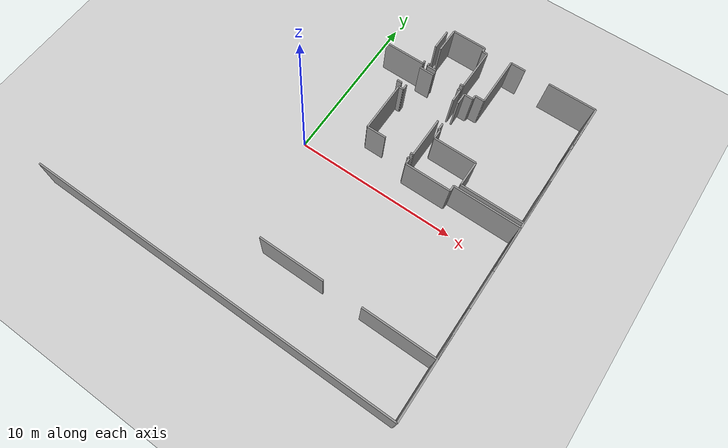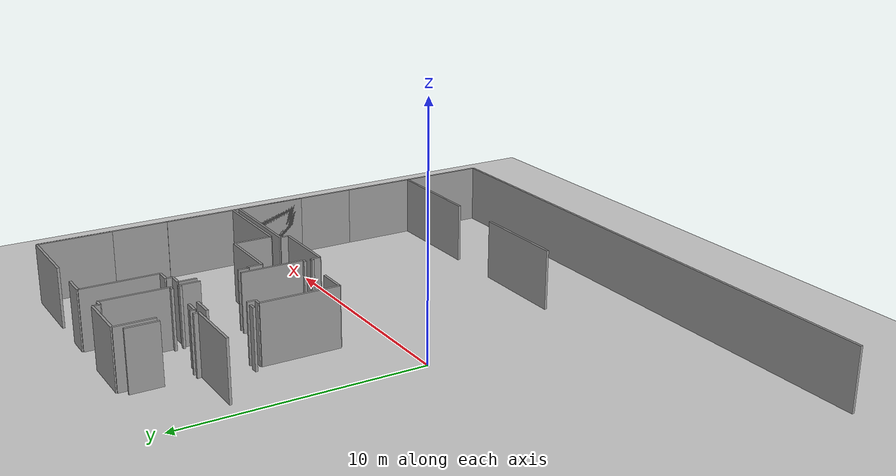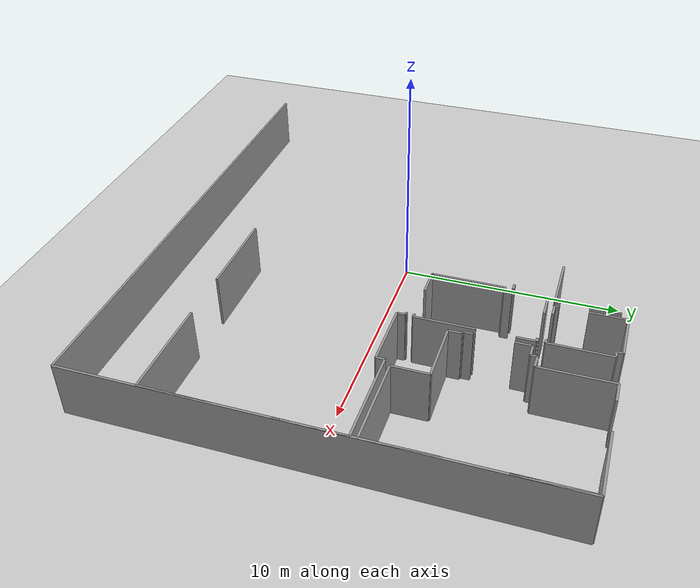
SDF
<sdf version="1.6">
 <world name="default">
  <model name="ground_plane">
   <static>1</static>
   <link name="link">
    <collision name="collision">
     <geometry><plane><normal>0 0 1</normal><size>100 100</size></plane></geometry>
     <surface><friction><ode><mu>100</mu><mu2>50</mu2></ode></friction></surface>
    </collision>
    <visual name="visual">
     <cast_shadows>0</cast_shadows>
     <geometry><plane><normal>0 0 1</normal><size>100 100</size></plane></geometry>
     <material>
      <script><uri>file://media/materials/scripts/gazebo.material</uri><name>Gazebo/Grey</name></script>
     </material>
    </visual>
   </link>
  </model>
  <model name="0510034880_A-40">
   <static>1</static>
   <link name="Wall_22">
    <collision name="Wall_22_Collision">
     <geometry><box><size>0.310292073206 0.1 2.5</size></box></geometry>
     <pose>0.155146036603 0 1.25 0 0 0</pose>
    </collision>
    <visual name="Wall_22_Visual">
     <pose>0.155146036603 0 1.25 0 0 0</pose>
     <geometry><box><size>0.310292073206 0.1 2.5</size></box></geometry>
     <material>
      <script><uri>file://media/materials/scripts/gazebo.material</uri><name>Gazebo/Grey</name></script>
      <ambient>1 1 1 1</ambient>
     </material>
    </visual>
    <pose>13.4078169734 -4.86386633572 0 0 0 3.14159265359</pose>
   </link>
   <link name="Wall_29">
    <collision name="Wall_29_Collision">
     <geometry><box><size>4.45962330745 0.1 2.5</size></box></geometry>
     <pose>2.22981165373 0 1.25 0 0 0</pose>
    </collision>
    <visual name="Wall_29_Visual">
     <pose>2.22981165373 0 1.25 0 0 0</pose>
     <geometry><box><size>4.45962330745 0.1 2.5</size></box></geometry>
     <material>
      <script><uri>file://media/materials/scripts/gazebo.material</uri><name>Gazebo/Grey</name></script>
      <ambient>1 1 1 1</ambient>
     </material>
    </visual>
    <pose>23.39708879 -17.1808365444 0 0 0 3.14159265359</pose>
   </link>
   <link name="Wall_30">
    <collision name="Wall_30_Collision">
     <geometry><box><size>4.08216899745 0.1 2.5</size></box></geometry>
     <pose>2.04108449873 0 1.25 0 0 0</pose>
    </collision>
    <visual name="Wall_30_Visual">
     <pose>2.04108449873 0 1.25 0 0 0</pose>
     <geometry><box><size>4.08216899745 0.1 2.5</size></box></geometry>
     <material>
      <script><uri>file://media/materials/scripts/gazebo.material</uri><name>Gazebo/Grey</name></script>
      <ambient>1 1 1 1</ambient>
     </material>
    </visual>
    <pose>16.5711710225 -17.1808365444 0 0 0 3.14159265359</pose>
   </link>
   <link name="Wall_35">
    <collision name="Wall_35_Collision">
     <geometry><box><size>0.143973490595 0.1 2.5</size></box></geometry>
     <pose>0.0719867452977 0 1.25 0 0 0</pose>
    </collision>
    <visual name="Wall_35_Visual">
     <pose>0.0719867452977 0 1.25 0 0 0</pose>
     <geometry><box><size>0.143973490595 0.1 2.5</size></box></geometry>
     <material>
      <script><uri>file://media/materials/scripts/gazebo.material</uri><name>Gazebo/Grey</name></script>
      <ambient>1 1 1 1</ambient>
     </material>
    </visual>
    <pose>16.2719245345 -8.75584812955 0 0 0 0.0</pose>
   </link>
   <link name="Wall_36">
    <collision name="Wall_36_Collision">
     <geometry><box><size>0.369709704245 0.1 2.5</size></box></geometry>
     <pose>0.184854852122 0 1.25 0 0 0</pose>
    </collision>
    <visual name="Wall_36_Visual">
     <pose>0.184854852122 0 1.25 0 0 0</pose>
     <geometry><box><size>0.369709704245 0.1 2.5</size></box></geometry>
     <material>
      <script><uri>file://media/materials/scripts/gazebo.material</uri><name>Gazebo/Grey</name></script>
      <ambient>1 1 1 1</ambient>
     </material>
    </visual>
    <pose>16.4158980251 -8.75584812955 0 0 0 -1.57079632679</pose>
   </link>
   <link name="Wall_37">
    <collision name="Wall_37_Collision">
     <geometry><box><size>2.83211345213 0.1 2.5</size></box></geometry>
     <pose>1.41605672606 0 1.25 0 0 0</pose>
    </collision>
    <visual name="Wall_37_Visual">
     <pose>1.41605672606 0 1.25 0 0 0</pose>
     <geometry><box><size>2.83211345213 0.1 2.5</size></box></geometry>
     <material>
      <script><uri>file://media/materials/scripts/gazebo.material</uri><name>Gazebo/Grey</name></script>
      <ambient>1 1 1 1</ambient>
     </material>
    </visual>
    <pose>16.4158980251 -9.1255578338 0 0 0 0.0</pose>
   </link>
   <link name="Wall_38">
    <collision name="Wall_38_Collision">
     <geometry><box><size>0.364885195742 0.1 2.5</size></box></geometry>
     <pose>0.182442597871 0 1.25 0 0 0</pose>
    </collision>
    <visual name="Wall_38_Visual">
     <pose>0.182442597871 0 1.25 0 0 0</pose>
     <geometry><box><size>0.364885195742 0.1 2.5</size></box></geometry>
     <material>
      <script><uri>file://media/materials/scripts/gazebo.material</uri><name>Gazebo/Grey</name></script>
      <ambient>1 1 1 1</ambient>
     </material>
    </visual>
    <pose>19.2480114773 -9.1255578338 0 0 0 1.57079632679</pose>
   </link>
   <link name="Wall_39">
    <collision name="Wall_39_Collision">
     <geometry><box><size>4.156567997 0.1 2.5</size></box></geometry>
     <pose>2.0782839985 0 1.25 0 0 0</pose>
    </collision>
    <visual name="Wall_39_Visual">
     <pose>2.0782839985 0 1.25 0 0 0</pose>
     <geometry><box><size>4.156567997 0.1 2.5</size></box></geometry>
     <material>
      <script><uri>file://media/materials/scripts/gazebo.material</uri><name>Gazebo/Grey</name></script>
      <ambient>1 1 1 1</ambient>
     </material>
    </visual>
    <pose>19.2480114773 -8.76067263805 0 0 0 0.0</pose>
   </link>
   <link name="Wall_40">
    <collision name="Wall_40_Collision">
     <geometry><box><size>2.93469773819 0.1 2.5</size></box></geometry>
     <pose>1.4673488691 0 1.25 0 0 0</pose>
    </collision>
    <visual name="Wall_40_Visual">
     <pose>1.4673488691 0 1.25 0 0 0</pose>
     <geometry><box><size>2.93469773819 0.1 2.5</size></box></geometry>
     <material>
      <script><uri>file://media/materials/scripts/gazebo.material</uri><name>Gazebo/Grey</name></script>
      <ambient>1 1 1 1</ambient>
     </material>
    </visual>
    <pose>23.4045794743 -8.76067263805 0 0 0 -1.57079632679</pose>
   </link>
   <link name="Wall_41">
    <collision name="Wall_41_Collision">
     <geometry><box><size>3.104072417 0.1 2.5</size></box></geometry>
     <pose>1.5520362085 0 1.25 0 0 0</pose>
    </collision>
    <visual name="Wall_41_Visual">
     <pose>1.5520362085 0 1.25 0 0 0</pose>
     <geometry><box><size>3.104072417 0.1 2.5</size></box></geometry>
     <material>
      <script><uri>file://media/materials/scripts/gazebo.material</uri><name>Gazebo/Grey</name></script>
      <ambient>1 1 1 1</ambient>
     </material>
    </visual>
    <pose>23.4045794743 -14.0767731656 0 0 0 -1.57320950874</pose>
   </link>
   <link name="Wall_42">
    <collision name="Wall_42_Collision">
     <geometry><box><size>0.170508287363 0.1 2.5</size></box></geometry>
     <pose>0.0852541436815 0 1.25 0 0 0</pose>
    </collision>
    <visual name="Wall_42_Visual">
     <pose>0.0852541436815 0 1.25 0 0 0</pose>
     <geometry><box><size>0.170508287363 0.1 2.5</size></box></geometry>
     <material>
      <script><uri>file://media/materials/scripts/gazebo.material</uri><name>Gazebo/Grey</name></script>
      <ambient>1 1 1 1</ambient>
     </material>
    </visual>
    <pose>16.4405284106 -8.42232223908 0 0 0 3.14159265359</pose>
   </link>
   <link name="Wall_43">
    <collision name="Wall_43_Collision">
     <geometry><box><size>1.2061271258 0.1 2.5</size></box></geometry>
     <pose>0.6030635629 0 1.25 0 0 0</pose>
    </collision>
    <visual name="Wall_43_Visual">
     <pose>0.6030635629 0 1.25 0 0 0</pose>
     <geometry><box><size>1.2061271258 0.1 2.5</size></box></geometry>
     <material>
      <script><uri>file://media/materials/scripts/gazebo.material</uri><name>Gazebo/Grey</name></script>
      <ambient>1 1 1 1</ambient>
     </material>
    </visual>
    <pose>14.6176259609 -8.42232223908 0 0 0 3.14159265359</pose>
   </link>
   <link name="Wall_44">
    <collision name="Wall_44_Collision">
     <geometry><box><size>3.22988148214 0.1 2.5</size></box></geometry>
     <pose>1.61494074107 0 1.25 0 0 0</pose>
    </collision>
    <visual name="Wall_44_Visual">
     <pose>1.61494074107 0 1.25 0 0 0</pose>
     <geometry><box><size>3.22988148214 0.1 2.5</size></box></geometry>
     <material>
      <script><uri>file://media/materials/scripts/gazebo.material</uri><name>Gazebo/Grey</name></script>
      <ambient>1 1 1 1</ambient>
     </material>
    </visual>
    <pose>13.4114988351 -8.42232223908 0 0 0 1.57079632679</pose>
   </link>
   <link name="Wall_45">
    <collision name="Wall_45_Collision">
     <geometry><box><size>0.301023938449 0.1 2.5</size></box></geometry>
     <pose>0.150511969225 0 1.25 0 0 0</pose>
    </collision>
    <visual name="Wall_45_Visual">
     <pose>0.150511969225 0 1.25 0 0 0</pose>
     <geometry><box><size>0.301023938449 0.1 2.5</size></box></geometry>
     <material>
      <script><uri>file://media/materials/scripts/gazebo.material</uri><name>Gazebo/Grey</name></script>
      <ambient>1 1 1 1</ambient>
     </material>
    </visual>
    <pose>13.4114988351 -5.19244075694 0 0 0 0.0</pose>
   </link>
   <link name="Wall_46">
    <collision name="Wall_46_Collision">
     <geometry><box><size>0.342286182227 0.1 2.5</size></box></geometry>
     <pose>0.171143091113 0 1.25 0 0 0</pose>
    </collision>
    <visual name="Wall_46_Visual">
     <pose>0.171143091113 0 1.25 0 0 0</pose>
     <geometry><box><size>0.342286182227 0.1 2.5</size></box></geometry>
     <material>
      <script><uri>file://media/materials/scripts/gazebo.material</uri><name>Gazebo/Grey</name></script>
      <ambient>1 1 1 1</ambient>
     </material>
    </visual>
    <pose>13.7125227736 -5.19244075694 0 0 0 1.57079632679</pose>
   </link>
   <link name="Wall_47">
    <collision name="Wall_47_Collision">
     <geometry><box><size>0.913355636105 0.1 2.5</size></box></geometry>
     <pose>0.456677818053 0 1.25 0 0 0</pose>
    </collision>
    <visual name="Wall_47_Visual">
     <pose>0.456677818053 0 1.25 0 0 0</pose>
     <geometry><box><size>0.913355636105 0.1 2.5</size></box></geometry>
     <material>
      <script><uri>file://media/materials/scripts/gazebo.material</uri><name>Gazebo/Grey</name></script>
      <ambient>1 1 1 1</ambient>
     </material>
    </visual>
    <pose>13.7125227736 -3.35442997797 0 0 0 0.0</pose>
   </link>
   <link name="Wall_48">
    <collision name="Wall_48_Collision">
     <geometry><box><size>0.176602403367 0.1 2.5</size></box></geometry>
     <pose>0.0883012016835 0 1.25 0 0 0</pose>
    </collision>
    <visual name="Wall_48_Visual">
     <pose>0.0883012016835 0 1.25 0 0 0</pose>
     <geometry><box><size>0.176602403367 0.1 2.5</size></box></geometry>
     <material>
      <script><uri>file://media/materials/scripts/gazebo.material</uri><name>Gazebo/Grey</name></script>
      <ambient>1 1 1 1</ambient>
     </material>
    </visual>
    <pose>16.2715436523 -3.35442997797 0 0 0 0.0</pose>
   </link>
   <link name="Wall_49">
    <collision name="Wall_49_Collision">
     <geometry><box><size>0.826006640047 0.1 2.5</size></box></geometry>
     <pose>0.413003320024 0 1.25 0 0 0</pose>
    </collision>
    <visual name="Wall_49_Visual">
     <pose>0.413003320024 0 1.25 0 0 0</pose>
     <geometry><box><size>0.826006640047 0.1 2.5</size></box></geometry>
     <material>
      <script><uri>file://media/materials/scripts/gazebo.material</uri><name>Gazebo/Grey</name></script>
      <ambient>1 1 1 1</ambient>
     </material>
    </visual>
    <pose>16.4481460556 -3.35442997797 0 0 0 -1.57079632679</pose>
   </link>
   <link name="Wall_50">
    <collision name="Wall_50_Collision">
     <geometry><box><size>2.61844959046 0.1 2.5</size></box></geometry>
     <pose>1.30922479523 0 1.25 0 0 0</pose>
    </collision>
    <visual name="Wall_50_Visual">
     <pose>1.30922479523 0 1.25 0 0 0</pose>
     <geometry><box><size>2.61844959046 0.1 2.5</size></box></geometry>
     <material>
      <script><uri>file://media/materials/scripts/gazebo.material</uri><name>Gazebo/Grey</name></script>
      <ambient>1 1 1 1</ambient>
     </material>
    </visual>
    <pose>16.4481460556 -5.80388372935 0 0 0 -1.57370555055</pose>
   </link>
   <link name="Wall_51">
    <collision name="Wall_51_Collision">
     <geometry><box><size>0.197550927131 0.1 2.5</size></box></geometry>
     <pose>0.0987754635654 0 1.25 0 0 0</pose>
    </collision>
    <visual name="Wall_51_Visual">
     <pose>0.0987754635654 0 1.25 0 0 0</pose>
     <geometry><box><size>0.197550927131 0.1 2.5</size></box></geometry>
     <material>
      <script><uri>file://media/materials/scripts/gazebo.material</uri><name>Gazebo/Grey</name></script>
      <ambient>1 1 1 1</ambient>
     </material>
    </visual>
    <pose>16.4261818459 -3.00858889474 0 0 0 3.14159265359</pose>
   </link>
   <link name="Wall_52">
    <collision name="Wall_52_Collision">
     <geometry><box><size>0.576020923132 0.1 2.5</size></box></geometry>
     <pose>0.288010461566 0 1.25 0 0 0</pose>
    </collision>
    <visual name="Wall_52_Visual">
     <pose>0.288010461566 0 1.25 0 0 0</pose>
     <geometry><box><size>0.576020923132 0.1 2.5</size></box></geometry>
     <material>
      <script><uri>file://media/materials/scripts/gazebo.material</uri><name>Gazebo/Grey</name></script>
      <ambient>1 1 1 1</ambient>
     </material>
    </visual>
    <pose>14.5890597922 -3.00858889474 0 0 0 3.14159265359</pose>
   </link>
   <link name="Wall_53">
    <collision name="Wall_53_Collision">
     <geometry><box><size>0.195265633629 0.1 2.5</size></box></geometry>
     <pose>0.0976328168147 0 1.25 0 0 0</pose>
    </collision>
    <visual name="Wall_53_Visual">
     <pose>0.0976328168147 0 1.25 0 0 0</pose>
     <geometry><box><size>0.195265633629 0.1 2.5</size></box></geometry>
     <material>
      <script><uri>file://media/materials/scripts/gazebo.material</uri><name>Gazebo/Grey</name></script>
      <ambient>1 1 1 1</ambient>
     </material>
    </visual>
    <pose>14.013038869 -3.00858889474 0 0 0 1.57079632679</pose>
   </link>
   <link name="Wall_54">
    <collision name="Wall_54_Collision">
     <geometry><box><size>1.60072113706 0.1 2.5</size></box></geometry>
     <pose>0.80036056853 0 1.25 0 0 0</pose>
    </collision>
    <visual name="Wall_54_Visual">
     <pose>0.80036056853 0 1.25 0 0 0</pose>
     <geometry><box><size>1.60072113706 0.1 2.5</size></box></geometry>
     <material>
      <script><uri>file://media/materials/scripts/gazebo.material</uri><name>Gazebo/Grey</name></script>
      <ambient>1 1 1 1</ambient>
     </material>
    </visual>
    <pose>14.013038869 -1.60072113706 0 0 0 1.57079632679</pose>
   </link>
   <link name="Wall_55">
    <collision name="Wall_55_Collision">
     <geometry><box><size>2.12443423116 0.1 2.5</size></box></geometry>
     <pose>1.06221711558 0 1.25 0 0 0</pose>
    </collision>
    <visual name="Wall_55_Visual">
     <pose>1.06221711558 0 1.25 0 0 0</pose>
     <geometry><box><size>2.12443423116 0.1 2.5</size></box></geometry>
     <material>
      <script><uri>file://media/materials/scripts/gazebo.material</uri><name>Gazebo/Grey</name></script>
      <ambient>1 1 1 1</ambient>
     </material>
    </visual>
    <pose>14.013038869 -0.0 0 0 0 0.0</pose>
   </link>
   <link name="Wall_56">
    <collision name="Wall_56_Collision">
     <geometry><box><size>0.274235220182 0.1 2.5</size></box></geometry>
     <pose>0.137117610091 0 1.25 0 0 0</pose>
    </collision>
    <visual name="Wall_56_Visual">
     <pose>0.137117610091 0 1.25 0 0 0</pose>
     <geometry><box><size>0.274235220182 0.1 2.5</size></box></geometry>
     <material>
      <script><uri>file://media/materials/scripts/gazebo.material</uri><name>Gazebo/Grey</name></script>
      <ambient>1 1 1 1</ambient>
     </material>
    </visual>
    <pose>16.1374731002 -0.0 0 0 0 -1.57079632679</pose>
   </link>
   <link name="Wall_57">
    <collision name="Wall_57_Collision">
     <geometry><box><size>0.307245015204 0.1 2.5</size></box></geometry>
     <pose>0.153622507602 0 1.25 0 0 0</pose>
    </collision>
    <visual name="Wall_57_Visual">
     <pose>0.153622507602 0 1.25 0 0 0</pose>
     <geometry><box><size>0.307245015204 0.1 2.5</size></box></geometry>
     <material>
      <script><uri>file://media/materials/scripts/gazebo.material</uri><name>Gazebo/Grey</name></script>
      <ambient>1 1 1 1</ambient>
     </material>
    </visual>
    <pose>16.1374731002 -0.274235220182 0 0 0 0.0</pose>
   </link>
   <link name="Wall_58">
    <collision name="Wall_58_Collision">
     <geometry><box><size>2.73441650282 0.1 2.5</size></box></geometry>
     <pose>1.36720825141 0 1.25 0 0 0</pose>
    </collision>
    <visual name="Wall_58_Visual">
     <pose>1.36720825141 0 1.25 0 0 0</pose>
     <geometry><box><size>2.73441650282 0.1 2.5</size></box></geometry>
     <material>
      <script><uri>file://media/materials/scripts/gazebo.material</uri><name>Gazebo/Grey</name></script>
      <ambient>1 1 1 1</ambient>
     </material>
    </visual>
    <pose>16.4447181154 -0.274235220182 0 0 0 -1.57757525439</pose>
   </link>
   <link name="Wall_59">
    <collision name="Wall_59_Collision">
     <geometry><box><size>2.54607088219 0.1 2.5</size></box></geometry>
     <pose>1.27303544109 0 1.25 0 0 0</pose>
    </collision>
    <visual name="Wall_59_Visual">
     <pose>1.27303544109 0 1.25 0 0 0</pose>
     <geometry><box><size>2.54607088219 0.1 2.5</size></box></geometry>
     <material>
      <script><uri>file://media/materials/scripts/gazebo.material</uri><name>Gazebo/Grey</name></script>
      <ambient>1 1 1 1</ambient>
     </material>
    </visual>
    <pose>13.7207752223 -3.03867859251 0 0 0 3.14159265359</pose>
   </link>
   <link name="Wall_64">
    <collision name="Wall_64_Collision">
     <geometry><box><size>1.30236337436 0.1 2.5</size></box></geometry>
     <pose>0.651181687181 0 1.25 0 0 0</pose>
    </collision>
    <visual name="Wall_64_Visual">
     <pose>0.651181687181 0 1.25 0 0 0</pose>
     <geometry><box><size>1.30236337436 0.1 2.5</size></box></geometry>
     <material>
      <script><uri>file://media/materials/scripts/gazebo.material</uri><name>Gazebo/Grey</name></script>
      <ambient>1 1 1 1</ambient>
     </material>
    </visual>
    <pose>13.6957639546 -0.300516095449 0 0 0 -1.57079632679</pose>
   </link>
   <link name="Wall_65">
    <collision name="Wall_65_Collision">
     <geometry><box><size>0.226739032602 0.1 2.5</size></box></geometry>
     <pose>0.113369516301 0 1.25 0 0 0</pose>
    </collision>
    <visual name="Wall_65_Visual">
     <pose>0.113369516301 0 1.25 0 0 0</pose>
     <geometry><box><size>0.226739032602 0.1 2.5</size></box></geometry>
     <material>
      <script><uri>file://media/materials/scripts/gazebo.material</uri><name>Gazebo/Grey</name></script>
      <ambient>1 1 1 1</ambient>
     </material>
    </visual>
    <pose>13.6957639546 -2.81332326111 0 0 0 -1.46026277616</pose>
   </link>
   <link name="Wall_66">
    <collision name="Wall_66_Collision">
     <geometry><box><size>3.87357248507 0.1 2.5</size></box></geometry>
     <pose>1.93678624253 0 1.25 0 0 0</pose>
    </collision>
    <visual name="Wall_66_Visual">
     <pose>1.93678624253 0 1.25 0 0 0</pose>
     <geometry><box><size>3.87357248507 0.1 2.5</size></box></geometry>
     <material>
      <script><uri>file://media/materials/scripts/gazebo.material</uri><name>Gazebo/Grey</name></script>
      <ambient>1 1 1 1</ambient>
     </material>
    </visual>
    <pose>23.4045794743 -8.46929771661 0 0 0 3.14159265359</pose>
   </link>
   <link name="Wall_67">
    <collision name="Wall_67_Collision">
     <geometry><box><size>1.60618044931 0.1 2.5</size></box></geometry>
     <pose>0.803090224657 0 1.25 0 0 0</pose>
    </collision>
    <visual name="Wall_67_Visual">
     <pose>0.803090224657 0 1.25 0 0 0</pose>
     <geometry><box><size>1.60618044931 0.1 2.5</size></box></geometry>
     <material>
      <script><uri>file://media/materials/scripts/gazebo.material</uri><name>Gazebo/Grey</name></script>
      <ambient>1 1 1 1</ambient>
     </material>
    </visual>
    <pose>19.5310069892 -8.46929771661 0 0 0 1.57079632679</pose>
   </link>
   <link name="Wall_68">
    <collision name="Wall_68_Collision">
     <geometry><box><size>2.66757232002 0.1 2.5</size></box></geometry>
     <pose>1.33378616001 0 1.25 0 0 0</pose>
    </collision>
    <visual name="Wall_68_Visual">
     <pose>1.33378616001 0 1.25 0 0 0</pose>
     <geometry><box><size>2.66757232002 0.1 2.5</size></box></geometry>
     <material>
      <script><uri>file://media/materials/scripts/gazebo.material</uri><name>Gazebo/Grey</name></script>
      <ambient>1 1 1 1</ambient>
     </material>
    </visual>
    <pose>19.5310069892 -6.8631172673 0 0 0 3.14159265359</pose>
   </link>
   <link name="Wall_69">
    <collision name="Wall_69_Collision">
     <geometry><box><size>0.605983660151 0.1 2.5</size></box></geometry>
     <pose>0.302991830076 0 1.25 0 0 0</pose>
    </collision>
    <visual name="Wall_69_Visual">
     <pose>0.302991830076 0 1.25 0 0 0</pose>
     <geometry><box><size>0.605983660151 0.1 2.5</size></box></geometry>
     <material>
      <script><uri>file://media/materials/scripts/gazebo.material</uri><name>Gazebo/Grey</name></script>
      <ambient>1 1 1 1</ambient>
     </material>
    </visual>
    <pose>16.8634346692 -6.8631172673 0 0 0 1.57079632679</pose>
   </link>
   <link name="Wall_70">
    <collision name="Wall_70_Collision">
     <geometry><box><size>0.101060757067 0.1 2.5</size></box></geometry>
     <pose>0.0505303785335 0 1.25 0 0 0</pose>
    </collision>
    <visual name="Wall_70_Visual">
     <pose>0.0505303785335 0 1.25 0 0 0</pose>
     <geometry><box><size>0.101060757067 0.1 2.5</size></box></geometry>
     <material>
      <script><uri>file://media/materials/scripts/gazebo.material</uri><name>Gazebo/Grey</name></script>
      <ambient>1 1 1 1</ambient>
     </material>
    </visual>
    <pose>16.8634346692 -6.25713360715 0 0 0 3.14159265359</pose>
   </link>
   <link name="Wall_71">
    <collision name="Wall_71_Collision">
     <geometry><box><size>0.429127335284 0.1 2.5</size></box></geometry>
     <pose>0.214563667642 0 1.25 0 0 0</pose>
    </collision>
    <visual name="Wall_71_Visual">
     <pose>0.214563667642 0 1.25 0 0 0</pose>
     <geometry><box><size>0.429127335284 0.1 2.5</size></box></geometry>
     <material>
      <script><uri>file://media/materials/scripts/gazebo.material</uri><name>Gazebo/Grey</name></script>
      <ambient>1 1 1 1</ambient>
     </material>
    </visual>
    <pose>16.7623739121 -6.25713360715 0 0 0 1.57079632679</pose>
   </link>
   <link name="Wall_72">
    <collision name="Wall_72_Collision">
     <geometry><box><size>0.729643430733 0.1 2.5</size></box></geometry>
     <pose>0.364821715367 0 1.25 0 0 0</pose>
    </collision>
    <visual name="Wall_72_Visual">
     <pose>0.364821715367 0 1.25 0 0 0</pose>
     <geometry><box><size>0.729643430733 0.1 2.5</size></box></geometry>
     <material>
      <script><uri>file://media/materials/scripts/gazebo.material</uri><name>Gazebo/Grey</name></script>
      <ambient>1 1 1 1</ambient>
     </material>
    </visual>
    <pose>16.7623739121 -4.17193024776 0 0 0 1.57079632679</pose>
   </link>
   <link name="Wall_73">
    <collision name="Wall_73_Collision">
     <geometry><box><size>0.565610141625 0.1 2.5</size></box></geometry>
     <pose>0.282805070812 0 1.25 0 0 0</pose>
    </collision>
    <visual name="Wall_73_Visual">
     <pose>0.282805070812 0 1.25 0 0 0</pose>
     <geometry><box><size>0.565610141625 0.1 2.5</size></box></geometry>
     <material>
      <script><uri>file://media/materials/scripts/gazebo.material</uri><name>Gazebo/Grey</name></script>
      <ambient>1 1 1 1</ambient>
     </material>
    </visual>
    <pose>16.7623739121 -3.44228681703 0 0 0 0.0</pose>
   </link>
   <link name="Wall_74">
    <collision name="Wall_74_Collision">
     <geometry><box><size>0.268775907928 0.1 2.5</size></box></geometry>
     <pose>0.134387953964 0 1.25 0 0 0</pose>
    </collision>
    <visual name="Wall_74_Visual">
     <pose>0.134387953964 0 1.25 0 0 0</pose>
     <geometry><box><size>0.268775907928 0.1 2.5</size></box></geometry>
     <material>
      <script><uri>file://media/materials/scripts/gazebo.material</uri><name>Gazebo/Grey</name></script>
      <ambient>1 1 1 1</ambient>
     </material>
    </visual>
    <pose>17.3279840537 -3.44228681703 0 0 0 1.57079632679</pose>
   </link>
   <link name="Wall_75">
    <collision name="Wall_75_Collision">
     <geometry><box><size>0.586812586889 0.1 2.5</size></box></geometry>
     <pose>0.293406293444 0 1.25 0 0 0</pose>
    </collision>
    <visual name="Wall_75_Visual">
     <pose>0.293406293444 0 1.25 0 0 0</pose>
     <geometry><box><size>0.586812586889 0.1 2.5</size></box></geometry>
     <material>
      <script><uri>file://media/materials/scripts/gazebo.material</uri><name>Gazebo/Grey</name></script>
      <ambient>1 1 1 1</ambient>
     </material>
    </visual>
    <pose>17.3279840537 -3.1735109091 0 0 0 0.0</pose>
   </link>
   <link name="Wall_76">
    <collision name="Wall_76_Collision">
     <geometry><box><size>3.16475061735 0.1 2.5</size></box></geometry>
     <pose>1.58237530867 0 1.25 0 0 0</pose>
    </collision>
    <visual name="Wall_76_Visual">
     <pose>1.58237530867 0 1.25 0 0 0</pose>
     <geometry><box><size>3.16475061735 0.1 2.5</size></box></geometry>
     <material>
      <script><uri>file://media/materials/scripts/gazebo.material</uri><name>Gazebo/Grey</name></script>
      <ambient>1 1 1 1</ambient>
     </material>
    </visual>
    <pose>17.9147966406 -3.1735109091 0 0 0 1.57079632679</pose>
   </link>
   <link name="Wall_77">
    <collision name="Wall_77_Collision">
     <geometry><box><size>0.945730627377 0.1 2.5</size></box></geometry>
     <pose>0.472865313688 0 1.25 0 0 0</pose>
    </collision>
    <visual name="Wall_77_Visual">
     <pose>0.472865313688 0 1.25 0 0 0</pose>
     <geometry><box><size>0.945730627377 0.1 2.5</size></box></geometry>
     <material>
      <script><uri>file://media/materials/scripts/gazebo.material</uri><name>Gazebo/Grey</name></script>
      <ambient>1 1 1 1</ambient>
     </material>
    </visual>
    <pose>17.9147966406 -0.0087602917558 0 0 0 0.0</pose>
   </link>
   <link name="Wall_78">
    <collision name="Wall_78_Collision">
     <geometry><box><size>2.97659478572 0.1 2.5</size></box></geometry>
     <pose>1.48829739286 0 1.25 0 0 0</pose>
    </collision>
    <visual name="Wall_78_Visual">
     <pose>1.48829739286 0 1.25 0 0 0</pose>
     <geometry><box><size>2.97659478572 0.1 2.5</size></box></geometry>
     <material>
      <script><uri>file://media/materials/scripts/gazebo.material</uri><name>Gazebo/Grey</name></script>
      <ambient>1 1 1 1</ambient>
     </material>
    </visual>
    <pose>20.4110989088 -0.0087602917558 0 0 0 0.0</pose>
   </link>
   <link name="Wall_79">
    <collision name="Wall_79_Collision">
     <geometry><box><size>3.09174818605 0.1 2.5</size></box></geometry>
     <pose>1.54587409302 0 1.25 0 0 0</pose>
    </collision>
    <visual name="Wall_79_Visual">
     <pose>1.54587409302 0 1.25 0 0 0</pose>
     <geometry><box><size>3.09174818605 0.1 2.5</size></box></geometry>
     <material>
      <script><uri>file://media/materials/scripts/gazebo.material</uri><name>Gazebo/Grey</name></script>
      <ambient>1 1 1 1</ambient>
     </material>
    </visual>
    <pose>23.3876936945 -0.0087602917558 0 0 0 -1.57079632679</pose>
   </link>
   <link name="Wall_80">
    <collision name="Wall_80_Collision">
     <geometry><box><size>3.00622406407 0.1 2.5</size></box></geometry>
     <pose>1.50311203204 0 1.25 0 0 0</pose>
    </collision>
    <visual name="Wall_80_Visual">
     <pose>1.50311203204 0 1.25 0 0 0</pose>
     <geometry><box><size>3.00622406407 0.1 2.5</size></box></geometry>
     <material>
      <script><uri>file://media/materials/scripts/gazebo.material</uri><name>Gazebo/Grey</name></script>
      <ambient>1 1 1 1</ambient>
     </material>
    </visual>
    <pose>23.3876936945 -5.46312107612 0 0 0 -1.5651793574</pose>
   </link>
   <link name="Wall_90">
    <collision name="Wall_90_Collision">
     <geometry><box><size>20.7946473348 0.1 2.5</size></box></geometry>
     <pose>10.3973236674 0 1.25 0 0 0</pose>
    </collision>
    <visual name="Wall_90_Visual">
     <pose>10.3973236674 0 1.25 0 0 0</pose>
     <geometry><box><size>20.7946473348 0.1 2.5</size></box></geometry>
     <material>
      <script><uri>file://media/materials/scripts/gazebo.material</uri><name>Gazebo/Grey</name></script>
      <ambient>1 1 1 1</ambient>
     </material>
    </visual>
    <pose>23.4045794743 -20.7946473348 0 0 0 1.57079632679</pose>
   </link>
   <link name="Wall_91">
    <collision name="Wall_91_Collision">
     <geometry><box><size>23.4045794743 0.1 2.5</size></box></geometry>
     <pose>11.7022897371 0 1.25 0 0 0</pose>
    </collision>
    <visual name="Wall_91_Visual">
     <pose>11.7022897371 0 1.25 0 0 0</pose>
     <geometry><box><size>23.4045794743 0.1 2.5</size></box></geometry>
     <material>
      <script><uri>file://media/materials/scripts/gazebo.material</uri><name>Gazebo/Grey</name></script>
      <ambient>1 1 1 1</ambient>
     </material>
    </visual>
    <pose>23.4045794743 -20.7946473348 0 0 0 3.14159265359</pose>
   </link>
   <pose>-10.4 10.3946473348 0 0 0 0</pose>
  </model>
 </world>
</sdf>
